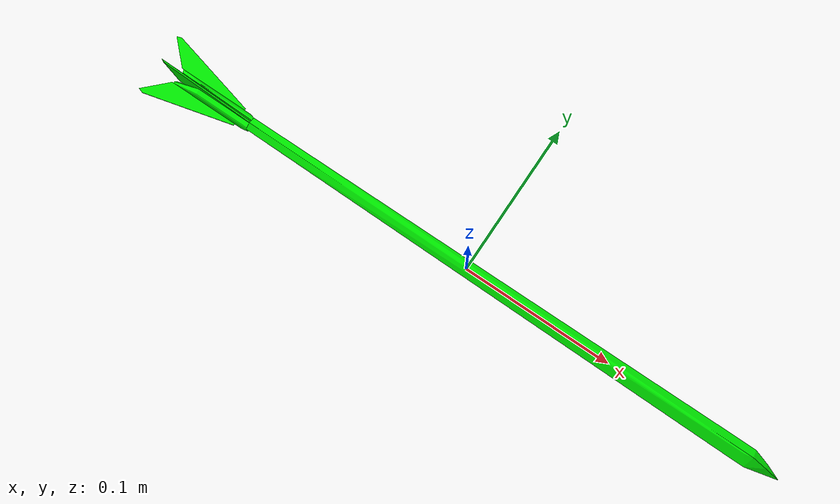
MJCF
<mujoco model="shapenetsem29">
  <asset>
    <mesh file="meshes/shapenetsem29/shapenetsem29_0.stl" name="shapenetsem29_0" scale="1 1 1"/>
    <mesh file="meshes/shapenetsem29/shapenetsem29_1.stl" name="shapenetsem29_1" scale="1 1 1"/>
    <mesh file="meshes/shapenetsem29/shapenetsem29_2.stl" name="shapenetsem29_2" scale="1 1 1"/>
    <mesh file="meshes/shapenetsem29/shapenetsem29_3.stl" name="shapenetsem29_3" scale="1 1 1"/>
    <mesh file="meshes/shapenetsem29/shapenetsem29_4.stl" name="shapenetsem29_4" scale="1 1 1"/>
    <mesh file="meshes/shapenetsem29/shapenetsem29_5.stl" name="shapenetsem29_5" scale="1 1 1"/>
  </asset>
  <worldbody>
    <body>
      <body name="collision">
        <geom pos="0 0 0" mesh="shapenetsem29_0" type="mesh" solimp="0.998 0.998 0.001" solref="0.001 1" density="100" friction="0.95 0.3 0.1" rgba="0 1 0 1" group="1" condim="4"/>
        <geom pos="0 0 0" mesh="shapenetsem29_1" type="mesh" solimp="0.998 0.998 0.001" solref="0.001 1" density="100" friction="0.95 0.3 0.1" rgba="0 1 0 1" group="1" condim="4"/>
        <geom pos="0 0 0" mesh="shapenetsem29_2" type="mesh" solimp="0.998 0.998 0.001" solref="0.001 1" density="100" friction="0.95 0.3 0.1" rgba="0 1 0 1" group="1" condim="4"/>
        <geom pos="0 0 0" mesh="shapenetsem29_3" type="mesh" solimp="0.998 0.998 0.001" solref="0.001 1" density="100" friction="0.95 0.3 0.1" rgba="0 1 0 1" group="1" condim="4"/>
        <geom pos="0 0 0" mesh="shapenetsem29_4" type="mesh" solimp="0.998 0.998 0.001" solref="0.001 1" density="100" friction="0.95 0.3 0.1" rgba="0 1 0 1" group="1" condim="4"/>
        <geom pos="0 0 0" mesh="shapenetsem29_5" type="mesh" solimp="0.998 0.998 0.001" solref="0.001 1" density="100" friction="0.95 0.3 0.1" rgba="0 1 0 1" group="1" condim="4"/>
      </body>
      <body name="visual">
        <geom pos="0 0 0" mesh="shapenetsem29_0" type="mesh" rgba="0 1 0 1" conaffinity="0" contype="0" group="0" mass="0.0001"/>
        <geom pos="0 0 0" mesh="shapenetsem29_1" type="mesh" rgba="0 1 0 1" conaffinity="0" contype="0" group="0" mass="0.0001"/>
        <geom pos="0 0 0" mesh="shapenetsem29_2" type="mesh" rgba="0 1 0 1" conaffinity="0" contype="0" group="0" mass="0.0001"/>
        <geom pos="0 0 0" mesh="shapenetsem29_3" type="mesh" rgba="0 1 0 1" conaffinity="0" contype="0" group="0" mass="0.0001"/>
        <geom pos="0 0 0" mesh="shapenetsem29_4" type="mesh" rgba="0 1 0 1" conaffinity="0" contype="0" group="0" mass="0.0001"/>
        <geom pos="0 0 0" mesh="shapenetsem29_5" type="mesh" rgba="0 1 0 1" conaffinity="0" contype="0" group="0" mass="0.0001"/>
      </body>
      <site rgba="0 0 0 0" size="0.005" pos="0 0 -0.06" name="bottom_site"/>
      <site rgba="0 0 0 0" size="0.005" pos="0 0 0.04" name="top_site"/>
      <site rgba="0 0 0 0" size="0.005" pos="0.025 0.025 0" name="horizontal_radius_site"/>
    </body>
  </worldbody>
</mujoco>
